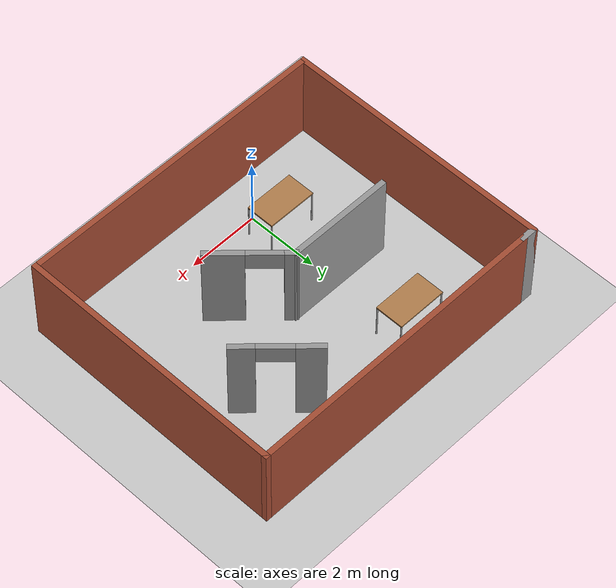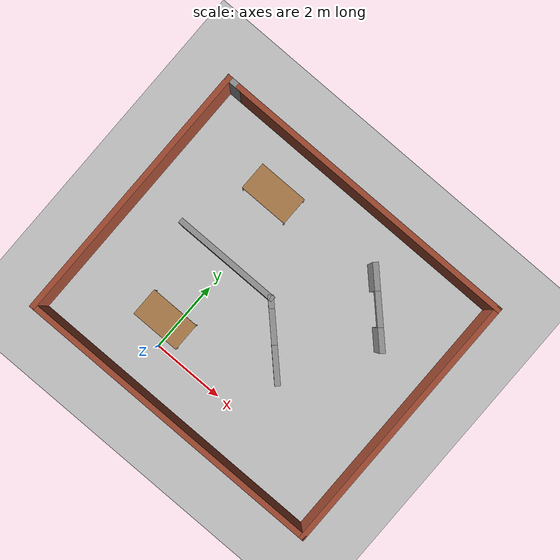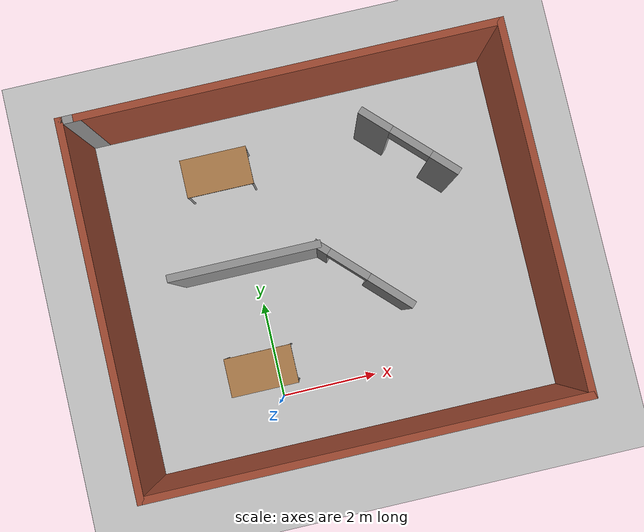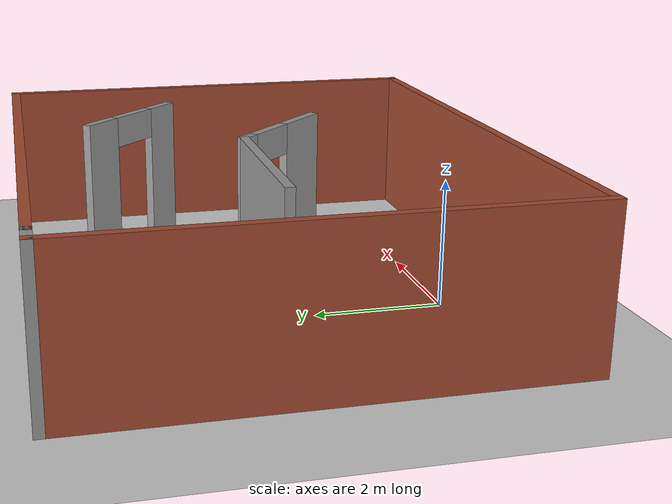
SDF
<sdf version="1.6">
 <world name="default">
  <light name="sun" type="directional">
   <pose>0 0 10 0 -0 0</pose>
   <diffuse>0.8 0.8 0.8 1</diffuse>
   <specular>0.1 0.1 0.1 1</specular>
   <attenuation>
    <range>1000</range>
    <constant>0.9</constant>
    <linear>0.01</linear>
    <quadratic>0.001</quadratic>
   </attenuation>
   <direction>-0.5 0.5 -1</direction>
  </light>
  <model name="ground_plane">
   <static>1</static>
   <link name="link">
    <collision name="collision">
     <geometry><plane><normal>0 0 1</normal><size>100 100</size></plane></geometry>
     <surface><friction><ode><mu>100</mu><mu2>50</mu2></ode></friction></surface>
    </collision>
    <visual name="visual">
     <cast_shadows>0</cast_shadows>
     <geometry><plane><normal>0 0 1</normal><size>100 100</size></plane></geometry>
     <material>
      <script><uri>file://media/materials/scripts/gazebo.material</uri><name>Gazebo/Grey</name></script>
     </material>
    </visual>
   </link>
  </model>
  <gravity>0 0 -9.8</gravity>
  <magnetic_field>6e-06 2.3e-05 -4.2e-05</magnetic_field>
  <atmosphere type="adiabatic"/>
  <physics name="default_physics" default="0" type="ode">
   <max_step_size>0.001</max_step_size>
   <real_time_factor>1</real_time_factor>
   <real_time_update_rate>1000</real_time_update_rate>
  </physics>
  <scene><ambient>0.4 0.4 0.4 1</ambient><background>0.7 0.7 0.7 1</background><shadows>1</shadows></scene>
  <spherical_coordinates>
   <surface_model>EARTH_WGS84</surface_model>
   <latitude_deg>0</latitude_deg>
   <longitude_deg>0</longitude_deg>
   <elevation>0</elevation>
   <heading_deg>0</heading_deg>
  </spherical_coordinates>
  <model name="multi_obstacles">
   <pose>1.446 2.534 0 0 -0 0</pose>
   <link name="Wall_0">
    <collision name="Wall_0_Collision">
     <geometry><box><size>8.75 0.15 2.5</size></box></geometry>
     <pose>0 0 1.25 0 -0 0</pose>
    </collision>
    <visual name="Wall_0_Visual">
     <pose>0 0 1.25 0 -0 0</pose>
     <geometry><box><size>8.75 0.15 2.5</size></box></geometry>
     <material>
      <script><uri>file://media/materials/scripts/gazebo.material</uri><name>Gazebo/Bricks</name></script>
      <ambient>1 1 1 1</ambient>
     </material>
    </visual>
    <pose>0.05 -3.675 0 0 -0 0</pose>
   </link>
   <link name="Wall_1">
    <collision name="Wall_1_Collision">
     <geometry><box><size>7.5 0.15 2.5</size></box></geometry>
     <pose>0 0 1.25 0 -0 0</pose>
    </collision>
    <visual name="Wall_1_Visual">
     <pose>0 0 1.25 0 -0 0</pose>
     <geometry><box><size>7.5 0.15 2.5</size></box></geometry>
     <material>
      <script><uri>file://media/materials/scripts/gazebo.material</uri><name>Gazebo/Bricks</name></script>
      <ambient>1 1 1 1</ambient>
     </material>
    </visual>
    <pose>4.35 0 0 0 -0 1.5708</pose>
   </link>
   <link name="Wall_11">
    <pose>2.1107 1.80263 0 0 0 -0.785398</pose>
    <visual name="Wall_11_Visual_0">
     <pose>-0.769693 0 1.25 0 -0 0</pose>
     <geometry><box><size>0.710613 0.15 2.5</size></box></geometry>
     <material>
      <script><uri>file://media/materials/scripts/gazebo.material</uri><name>Gazebo/Grey</name></script>
      <ambient>1 1 1 1</ambient>
     </material>
    </visual>
    <collision name="Wall_11_Collision_0">
     <geometry><box><size>0.710613 0.15 2.5</size></box></geometry>
     <pose>-0.769693 0 1.25 0 -0 0</pose>
    </collision>
    <visual name="Wall_11_Visual_1">
     <pose>0.805307 0 1.25 0 -0 0</pose>
     <geometry><box><size>0.639387 0.15 2.5</size></box></geometry>
     <material>
      <script><uri>file://media/materials/scripts/gazebo.material</uri><name>Gazebo/Grey</name></script>
      <ambient>1 1 1 1</ambient>
     </material>
    </visual>
    <collision name="Wall_11_Collision_1">
     <geometry><box><size>0.639387 0.15 2.5</size></box></geometry>
     <pose>0.805307 0 1.25 0 -0 0</pose>
    </collision>
    <visual name="Wall_11_Visual_2">
     <pose>0.035613 0 2.25 0 -0 0</pose>
     <geometry><box><size>0.9 0.15 0.5</size></box></geometry>
     <material>
      <script><uri>file://media/materials/scripts/gazebo.material</uri><name>Gazebo/Grey</name></script>
      <ambient>1 1 1 1</ambient>
     </material>
    </visual>
    <collision name="Wall_11_Collision_2">
     <geometry><box><size>0.9 0.15 0.5</size></box></geometry>
     <pose>0.035613 0 2.25 0 -0 0</pose>
    </collision>
   </link>
   <link name="Wall_2">
    <collision name="Wall_2_Collision">
     <geometry><box><size>8.5 0.15 2.5</size></box></geometry>
     <pose>0 0 1.25 0 -0 0</pose>
    </collision>
    <visual name="Wall_2_Visual">
     <pose>0 0 1.25 0 -0 0</pose>
     <geometry><box><size>8.5 0.15 2.5</size></box></geometry>
     <material>
      <script><uri>file://media/materials/scripts/gazebo.material</uri><name>Gazebo/Bricks</name></script>
      <ambient>1 1 1 1</ambient>
     </material>
    </visual>
    <pose>0.175 3.675 0 0 -0 3.14159</pose>
   </link>
   <link name="Wall_3">
    <collision name="Wall_3_Collision">
     <geometry><box><size>0.5 0.15 2.5</size></box></geometry>
     <pose>0 0 1.25 0 -0 0</pose>
    </collision>
    <visual name="Wall_3_Visual">
     <pose>0 0 1.25 0 -0 0</pose>
     <geometry><box><size>0.5 0.15 2.5</size></box></geometry>
     <material>
      <script><uri>file://media/materials/scripts/gazebo.material</uri><name>Gazebo/Grey</name></script>
      <ambient>1 1 1 1</ambient>
     </material>
    </visual>
    <pose>-4.175 3.675 0 0 -0 3.14159</pose>
   </link>
   <link name="Wall_4">
    <collision name="Wall_4_Collision">
     <geometry><box><size>7.5 0.15 2.5</size></box></geometry>
     <pose>0 0 1.25 0 -0 0</pose>
    </collision>
    <visual name="Wall_4_Visual">
     <pose>0 0 1.25 0 -0 0</pose>
     <geometry><box><size>7.5 0.15 2.5</size></box></geometry>
     <material>
      <script><uri>file://media/materials/scripts/gazebo.material</uri><name>Gazebo/Bricks</name></script>
      <ambient>1 1 1 1</ambient>
     </material>
    </visual>
    <pose>-4.35 0 0 0 0 -1.5708</pose>
   </link>
   <link name="Wall_8">
    <collision name="Wall_8_Collision">
     <geometry><box><size>3 0.15 2.5</size></box></geometry>
     <pose>0 0 1.25 0 -0 0</pose>
    </collision>
    <visual name="Wall_8_Visual">
     <pose>0 0 1.25 0 -0 0</pose>
     <geometry><box><size>3 0.15 2.5</size></box></geometry>
     <material>
      <script><uri>file://media/materials/scripts/gazebo.material</uri><name>Gazebo/Grey</name></script>
      <ambient>1 1 1 1</ambient>
     </material>
    </visual>
    <pose>-1.48696 0.265419 0 0 -0 0</pose>
   </link>
   <link name="Wall_9">
    <pose>0.680504 -0.477043 0 0 0 -0.785398</pose>
    <visual name="Wall_9_Visual_0">
     <pose>-0.954886 0 1.25 0 -0 0</pose>
     <geometry><box><size>0.340228 0.15 2.5</size></box></geometry>
     <material>
      <script><uri>file://media/materials/scripts/gazebo.material</uri><name>Gazebo/Grey</name></script>
      <ambient>1 1 1 1</ambient>
     </material>
    </visual>
    <collision name="Wall_9_Collision_0">
     <geometry><box><size>0.340228 0.15 2.5</size></box></geometry>
     <pose>-0.954886 0 1.25 0 -0 0</pose>
    </collision>
    <visual name="Wall_9_Visual_1">
     <pose>0.620114 0 1.25 0 -0 0</pose>
     <geometry><box><size>1.00977 0.15 2.5</size></box></geometry>
     <material>
      <script><uri>file://media/materials/scripts/gazebo.material</uri><name>Gazebo/Grey</name></script>
      <ambient>1 1 1 1</ambient>
     </material>
    </visual>
    <collision name="Wall_9_Collision_1">
     <geometry><box><size>1.00977 0.15 2.5</size></box></geometry>
     <pose>0.620114 0 1.25 0 -0 0</pose>
    </collision>
    <visual name="Wall_9_Visual_2">
     <pose>-0.334772 0 2.25 0 -0 0</pose>
     <geometry><box><size>0.9 0.15 0.5</size></box></geometry>
     <material>
      <script><uri>file://media/materials/scripts/gazebo.material</uri><name>Gazebo/Grey</name></script>
      <ambient>1 1 1 1</ambient>
     </material>
    </visual>
    <collision name="Wall_9_Collision_2">
     <geometry><box><size>0.9 0.15 0.5</size></box></geometry>
     <pose>-0.334772 0 2.25 0 -0 0</pose>
    </collision>
   </link>
   <static>1</static>
  </model>
  <model name="table">
   <static>0</static>
   <link name="link">
    <collision name="surface">
     <pose>0 0 1 0 -0 0</pose>
     <geometry><box><size>1.5 0.8 0.03</size></box></geometry>
     <surface><friction><ode><mu>0.6</mu><mu2>0.6</mu2></ode></friction></surface>
    </collision>
    <visual name="visual1">
     <pose>0 0 1 0 -0 0</pose>
     <geometry><box><size>1.4 0.8 0.04</size></box></geometry>
     <material>
      <script><uri>file://media/materials/scripts/gazebo.material</uri><name>Gazebo/Wood</name></script>
     </material>
    </visual>
    <collision name="front_left_leg">
     <pose>0.68 0.38 0.5 0 -0 0</pose>
     <geometry><cylinder><radius>0.02</radius><length>1</length></cylinder></geometry>
    </collision>
    <visual name="front_left_leg">
     <pose>0.68 0.38 0.5 0 -0 0</pose>
     <geometry><cylinder><radius>0.02</radius><length>1</length></cylinder></geometry>
     <material>
      <script><uri>file://media/materials/scripts/gazebo.material</uri><name>Gazebo/Grey</name></script>
     </material>
    </visual>
    <collision name="front_right_leg">
     <pose>0.68 -0.38 0.5 0 -0 0</pose>
     <geometry><cylinder><radius>0.02</radius><length>1</length></cylinder></geometry>
    </collision>
    <visual name="front_right_leg">
     <pose>0.68 -0.38 0.5 0 -0 0</pose>
     <geometry><cylinder><radius>0.02</radius><length>1</length></cylinder></geometry>
     <material>
      <script><uri>file://media/materials/scripts/gazebo.material</uri><name>Gazebo/Grey</name></script>
     </material>
    </visual>
    <collision name="back_right_leg">
     <pose>-0.68 -0.38 0.5 0 -0 0</pose>
     <geometry><cylinder><radius>0.02</radius><length>1</length></cylinder></geometry>
    </collision>
    <visual name="back_right_leg">
     <pose>-0.68 -0.38 0.5 0 -0 0</pose>
     <geometry><cylinder><radius>0.02</radius><length>1</length></cylinder></geometry>
     <material>
      <script><uri>file://media/materials/scripts/gazebo.material</uri><name>Gazebo/Grey</name></script>
     </material>
    </visual>
    <collision name="back_left_leg">
     <pose>-0.68 0.38 0.5 0 -0 0</pose>
     <geometry><cylinder><radius>0.02</radius><length>1</length></cylinder></geometry>
    </collision>
    <visual name="back_left_leg">
     <pose>-0.68 0.38 0.5 0 -0 0</pose>
     <geometry><cylinder><radius>0.02</radius><length>1</length></cylinder></geometry>
     <material>
      <script><uri>file://media/materials/scripts/gazebo.material</uri><name>Gazebo/Grey</name></script>
     </material>
    </visual>
    <inertial>
     <inertia><ixx>1</ixx><ixy>0</ixy><ixz>0</ixz><iyy>1</iyy><iyz>0</iyz><izz>1</izz></inertia>
     <mass>1</mass>
    </inertial>
   </link>
   <pose>-0.290365 0.654205 -8e-06 0 -0 0</pose>
  </model>
  <model name="table_0">
   <static>0</static>
   <link name="link">
    <collision name="surface">
     <pose>0 0 1 0 -0 0</pose>
     <geometry><box><size>1.5 0.8 0.03</size></box></geometry>
     <surface><friction><ode><mu>0.6</mu><mu2>0.6</mu2></ode></friction></surface>
    </collision>
    <visual name="visual1">
     <pose>0 0 1 0 -0 0</pose>
     <geometry><box><size>1.4 0.8 0.04</size></box></geometry>
     <material>
      <script><uri>file://media/materials/scripts/gazebo.material</uri><name>Gazebo/Wood</name></script>
     </material>
    </visual>
    <collision name="front_left_leg">
     <pose>0.68 0.38 0.5 0 -0 0</pose>
     <geometry><cylinder><radius>0.02</radius><length>1</length></cylinder></geometry>
    </collision>
    <visual name="front_left_leg">
     <pose>0.68 0.38 0.5 0 -0 0</pose>
     <geometry><cylinder><radius>0.02</radius><length>1</length></cylinder></geometry>
     <material>
      <script><uri>file://media/materials/scripts/gazebo.material</uri><name>Gazebo/Grey</name></script>
     </material>
    </visual>
    <collision name="front_right_leg">
     <pose>0.68 -0.38 0.5 0 -0 0</pose>
     <geometry><cylinder><radius>0.02</radius><length>1</length></cylinder></geometry>
    </collision>
    <visual name="front_right_leg">
     <pose>0.68 -0.38 0.5 0 -0 0</pose>
     <geometry><cylinder><radius>0.02</radius><length>1</length></cylinder></geometry>
     <material>
      <script><uri>file://media/materials/scripts/gazebo.material</uri><name>Gazebo/Grey</name></script>
     </material>
    </visual>
    <collision name="back_right_leg">
     <pose>-0.68 -0.38 0.5 0 -0 0</pose>
     <geometry><cylinder><radius>0.02</radius><length>1</length></cylinder></geometry>
    </collision>
    <visual name="back_right_leg">
     <pose>-0.68 -0.38 0.5 0 -0 0</pose>
     <geometry><cylinder><radius>0.02</radius><length>1</length></cylinder></geometry>
     <material>
      <script><uri>file://media/materials/scripts/gazebo.material</uri><name>Gazebo/Grey</name></script>
     </material>
    </visual>
    <collision name="back_left_leg">
     <pose>-0.68 0.38 0.5 0 -0 0</pose>
     <geometry><cylinder><radius>0.02</radius><length>1</length></cylinder></geometry>
    </collision>
    <visual name="back_left_leg">
     <pose>-0.68 0.38 0.5 0 -0 0</pose>
     <geometry><cylinder><radius>0.02</radius><length>1</length></cylinder></geometry>
     <material>
      <script><uri>file://media/materials/scripts/gazebo.material</uri><name>Gazebo/Grey</name></script>
     </material>
    </visual>
    <inertial>
     <inertia><ixx>1</ixx><ixy>0</ixy><ixz>0</ixz><iyy>1</iyy><iyz>0</iyz><izz>1</izz></inertia>
     <mass>1</mass>
    </inertial>
   </link>
   <pose>-0.28538 4.8473 -2e-06 0 -0 0</pose>
  </model>
 </world>
</sdf>
